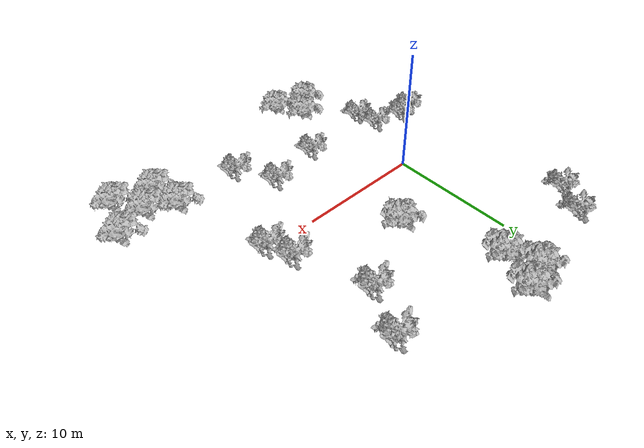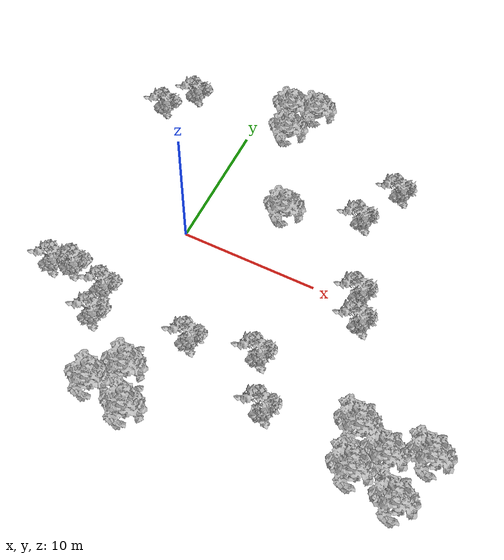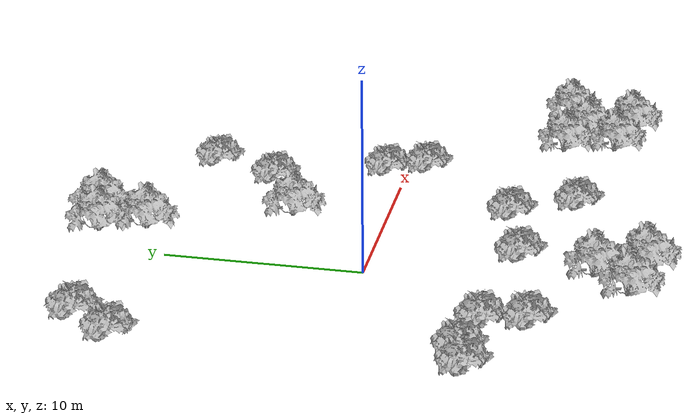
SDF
<sdf version="1.6">
 <world name="forest_1">
  <light name="sun" type="directional">
   <pose>0 0 10 0 -0 0</pose>
   <diffuse>0.8 0.8 0.8 1</diffuse>
   <specular>0.2 0.2 0.2 1</specular>
   <attenuation>
    <range>1000</range>
    <constant>0.9</constant>
    <linear>0.01</linear>
    <quadratic>0.001</quadratic>
   </attenuation>
   <direction>-0.5 0.1 -0.9</direction>
  </light>
  <gravity>0 0 -9.8</gravity>
  <magnetic_field>6e-06 2.3e-05 -4.2e-05</magnetic_field>
  <atmosphere type="adiabatic"/>
  <physics name="default_physics" default="0" type="ode">
   <max_step_size>0.001</max_step_size>
   <real_time_factor>1</real_time_factor>
   <real_time_update_rate>1000</real_time_update_rate>
  </physics>
  <scene><ambient>0.4 0.4 0.4 1</ambient><background>0.7 0.7 0.7 1</background><shadows>1</shadows></scene>
  <audio><device>default</device></audio>
  <spherical_coordinates>
   <surface_model>EARTH_WGS84</surface_model>
   <latitude_deg>0</latitude_deg>
   <longitude_deg>0</longitude_deg>
   <elevation>0</elevation>
   <heading_deg>0</heading_deg>
  </spherical_coordinates>
  <model name="Bush 2">
   <static>1</static>
   <pose>-6.04361 -5.68985 0 1.57079 -0 0</pose>
   <link name="link">
    <collision name="collision">
     <geometry><mesh><scale>5 5 5</scale><uri>model://bush_2/meshes/bush_2.obj</uri></mesh></geometry>
    </collision>
    <visual name="visual">
     <geometry><mesh><scale>5 5 5</scale><uri>model://bush_2/meshes/bush_2.obj</uri></mesh></geometry>
    </visual>
   </link>
  </model>
  <model name="Bush 2_clone">
   <static>1</static>
   <pose>-7.52451 -6.09843 0 1.57079 -0 0</pose>
   <link name="link">
    <collision name="collision">
     <geometry><mesh><scale>5 5 5</scale><uri>model://bush_2/meshes/bush_2.obj</uri></mesh></geometry>
    </collision>
    <visual name="visual">
     <geometry><mesh><scale>5 5 5</scale><uri>model://bush_2/meshes/bush_2.obj</uri></mesh></geometry>
    </visual>
   </link>
  </model>
  <model name="Bush 2_clone_clone">
   <static>1</static>
   <pose>-2.83557 -8.43174 0 1.57079 -0 0</pose>
   <link name="link">
    <collision name="collision">
     <geometry><mesh><scale>5 5 5</scale><uri>model://bush_2/meshes/bush_2.obj</uri></mesh></geometry>
    </collision>
    <visual name="visual">
     <geometry><mesh><scale>5 5 5</scale><uri>model://bush_2/meshes/bush_2.obj</uri></mesh></geometry>
    </visual>
   </link>
  </model>
  <model name="Bush 2_clone_clone_0">
   <static>1</static>
   <pose>3.87929 -7.17497 0 1.57079 -0 0</pose>
   <link name="link">
    <collision name="collision">
     <geometry><mesh><scale>5 5 5</scale><uri>model://bush_2/meshes/bush_2.obj</uri></mesh></geometry>
    </collision>
    <visual name="visual">
     <geometry><mesh><scale>5 5 5</scale><uri>model://bush_2/meshes/bush_2.obj</uri></mesh></geometry>
    </visual>
   </link>
  </model>
  <model name="Bush 2_clone_clone_1">
   <static>1</static>
   <pose>8.5224 -6.12644 0 1.57079 -0 0</pose>
   <link name="link">
    <collision name="collision">
     <geometry><mesh><scale>5 5 5</scale><uri>model://bush_2/meshes/bush_2.obj</uri></mesh></geometry>
    </collision>
    <visual name="visual">
     <geometry><mesh><scale>5 5 5</scale><uri>model://bush_2/meshes/bush_2.obj</uri></mesh></geometry>
    </visual>
   </link>
  </model>
  <model name="Bush 2_clone_clone_1_clone">
   <static>1</static>
   <pose>10.3527 -9.39984 0 1.57079 -0 0</pose>
   <link name="link">
    <collision name="collision">
     <geometry><mesh><scale>5 5 5</scale><uri>model://bush_2/meshes/bush_2.obj</uri></mesh></geometry>
    </collision>
    <visual name="visual">
     <geometry><mesh><scale>5 5 5</scale><uri>model://bush_2/meshes/bush_2.obj</uri></mesh></geometry>
    </visual>
   </link>
  </model>
  <model name="Bush 2_clone_clone_1_clone_0">
   <static>1</static>
   <pose>13.4885 -0.881759 0 1.57079 -0 0</pose>
   <link name="link">
    <collision name="collision">
     <geometry><mesh><scale>5 5 5</scale><uri>model://bush_2/meshes/bush_2.obj</uri></mesh></geometry>
    </collision>
    <visual name="visual">
     <geometry><mesh><scale>5 5 5</scale><uri>model://bush_2/meshes/bush_2.obj</uri></mesh></geometry>
    </visual>
   </link>
  </model>
  <model name="Bush 2_clone_clone_1_clone_1">
   <static>1</static>
   <pose>12.7046 1.20077 0 1.57079 -0 0</pose>
   <link name="link">
    <collision name="collision">
     <geometry><mesh><scale>5 5 5</scale><uri>model://bush_2/meshes/bush_2.obj</uri></mesh></geometry>
    </collision>
    <visual name="visual">
     <geometry><mesh><scale>5 5 5</scale><uri>model://bush_2/meshes/bush_2.obj</uri></mesh></geometry>
    </visual>
   </link>
  </model>
  <model name="Bush 2_clone_clone_1_clone_2">
   <static>1</static>
   <pose>12.1716 10.5134 0 1.57079 -0 0</pose>
   <link name="link">
    <collision name="collision">
     <geometry><mesh><scale>5 5 5</scale><uri>model://bush_2/meshes/bush_2.obj</uri></mesh></geometry>
    </collision>
    <visual name="visual">
     <geometry><mesh><scale>5 5 5</scale><uri>model://bush_2/meshes/bush_2.obj</uri></mesh></geometry>
    </visual>
   </link>
  </model>
  <model name="Bush 2_clone_clone_1_clone_3">
   <static>1</static>
   <pose>10.5415 6.9661 0 1.57079 -0 0</pose>
   <link name="link">
    <collision name="collision">
     <geometry><mesh><scale>5 5 5</scale><uri>model://bush_2/meshes/bush_2.obj</uri></mesh></geometry>
    </collision>
    <visual name="visual">
     <geometry><mesh><scale>5 5 5</scale><uri>model://bush_2/meshes/bush_2.obj</uri></mesh></geometry>
    </visual>
   </link>
  </model>
  <model name="Bush 2_clone_clone_1_clone_4">
   <static>1</static>
   <pose>-7.62479 10.3688 0 1.57079 -0 0</pose>
   <link name="link">
    <collision name="collision">
     <geometry><mesh><scale>5 5 5</scale><uri>model://bush_2/meshes/bush_2.obj</uri></mesh></geometry>
    </collision>
    <visual name="visual">
     <geometry><mesh><scale>5 5 5</scale><uri>model://bush_2/meshes/bush_2.obj</uri></mesh></geometry>
    </visual>
   </link>
  </model>
  <model name="Bush 2_clone_clone_1_clone_5">
   <static>1</static>
   <pose>-5.97278 12.6192 0 1.57079 -0 0</pose>
   <link name="link">
    <collision name="collision">
     <geometry><mesh><scale>5 5 5</scale><uri>model://bush_2/meshes/bush_2.obj</uri></mesh></geometry>
    </collision>
    <visual name="visual">
     <geometry><mesh><scale>5 5 5</scale><uri>model://bush_2/meshes/bush_2.obj</uri></mesh></geometry>
    </visual>
   </link>
  </model>
  <model name="Bush 3">
   <static>1</static>
   <pose>1.79788 -10.9738 0 1.57079 -0 0</pose>
   <link name="link">
    <collision name="collision">
     <geometry><mesh><scale>5 5 5</scale><uri>model://bush_3/meshes/bush_3.obj</uri></mesh></geometry>
    </collision>
    <visual name="visual">
     <geometry><mesh><scale>5 5 5</scale><uri>model://bush_3/meshes/bush_3.obj</uri></mesh></geometry>
    </visual>
   </link>
  </model>
  <model name="Bush 3_clone">
   <static>1</static>
   <pose>0.185512 -12.7582 0 1.57079 -0 0</pose>
   <link name="link">
    <collision name="collision">
     <geometry><mesh><scale>5 5 5</scale><uri>model://bush_3/meshes/bush_3.obj</uri></mesh></geometry>
    </collision>
    <visual name="visual">
     <geometry><mesh><scale>5 5 5</scale><uri>model://bush_3/meshes/bush_3.obj</uri></mesh></geometry>
    </visual>
   </link>
  </model>
  <model name="Bush 3_clone_0">
   <static>1</static>
   <pose>3.10593 -13.3626 0 1.57079 -0 0</pose>
   <link name="link">
    <collision name="collision">
     <geometry><mesh><scale>5 5 5</scale><uri>model://bush_3/meshes/bush_3.obj</uri></mesh></geometry>
    </collision>
    <visual name="visual">
     <geometry><mesh><scale>5 5 5</scale><uri>model://bush_3/meshes/bush_3.obj</uri></mesh></geometry>
    </visual>
   </link>
  </model>
  <model name="Bush 3_clone_1">
   <static>1</static>
   <pose>2.80683 11.7862 0 1.57079 -0 0</pose>
   <link name="link">
    <collision name="collision">
     <geometry><mesh><scale>5 5 5</scale><uri>model://bush_3/meshes/bush_3.obj</uri></mesh></geometry>
    </collision>
    <visual name="visual">
     <geometry><mesh><scale>5 5 5</scale><uri>model://bush_3/meshes/bush_3.obj</uri></mesh></geometry>
    </visual>
   </link>
  </model>
  <model name="Bush 3_clone_2">
   <static>1</static>
   <pose>4.00314 14.5781 0 1.57079 -0 0</pose>
   <link name="link">
    <collision name="collision">
     <geometry><mesh><scale>5 5 5</scale><uri>model://bush_3/meshes/bush_3.obj</uri></mesh></geometry>
    </collision>
    <visual name="visual">
     <geometry><mesh><scale>5 5 5</scale><uri>model://bush_3/meshes/bush_3.obj</uri></mesh></geometry>
    </visual>
   </link>
  </model>
  <model name="Bush 3_clone_3">
   <static>1</static>
   <pose>2.06905 14.0669 0 1.57079 -0 0</pose>
   <link name="link">
    <collision name="collision">
     <geometry><mesh><scale>5 5 5</scale><uri>model://bush_3/meshes/bush_3.obj</uri></mesh></geometry>
    </collision>
    <visual name="visual">
     <geometry><mesh><scale>5 5 5</scale><uri>model://bush_3/meshes/bush_3.obj</uri></mesh></geometry>
    </visual>
   </link>
  </model>
  <model name="Bush 3_clone_3_clone">
   <static>1</static>
   <pose>5.68897 4.83527 0 1.57079 -0 0</pose>
   <link name="link">
    <collision name="collision">
     <geometry><mesh><scale>5 5 5</scale><uri>model://bush_3/meshes/bush_3.obj</uri></mesh></geometry>
    </collision>
    <visual name="visual">
     <geometry><mesh><scale>5 5 5</scale><uri>model://bush_3/meshes/bush_3.obj</uri></mesh></geometry>
    </visual>
   </link>
  </model>
  <model name="Bush 2_clone_clone_0_clone">
   <static>1</static>
   <pose>-3.24013 -6.28072 0 1.57079 -0 0</pose>
   <link name="link">
    <collision name="collision">
     <geometry><mesh><scale>5 5 5</scale><uri>model://bush_2/meshes/bush_2.obj</uri></mesh></geometry>
    </collision>
    <visual name="visual">
     <geometry><mesh><scale>5 5 5</scale><uri>model://bush_2/meshes/bush_2.obj</uri></mesh></geometry>
    </visual>
   </link>
  </model>
  <model name="Bush 3_clone_4">
   <static>1</static>
   <pose>17.1021 -10.6666 0 1.57079 -0 0</pose>
   <link name="link">
    <collision name="collision">
     <geometry><mesh><scale>5 5 5</scale><uri>model://bush_3/meshes/bush_3.obj</uri></mesh></geometry>
    </collision>
    <visual name="visual">
     <geometry><mesh><scale>5 5 5</scale><uri>model://bush_3/meshes/bush_3.obj</uri></mesh></geometry>
    </visual>
   </link>
  </model>
  <model name="Bush 3_clone_5">
   <static>1</static>
   <pose>18.6119 -8.9659 0 1.57079 -0 0</pose>
   <link name="link">
    <collision name="collision">
     <geometry><mesh><scale>5 5 5</scale><uri>model://bush_3/meshes/bush_3.obj</uri></mesh></geometry>
    </collision>
    <visual name="visual">
     <geometry><mesh><scale>5 5 5</scale><uri>model://bush_3/meshes/bush_3.obj</uri></mesh></geometry>
    </visual>
   </link>
  </model>
  <model name="Bush 3_clone_6">
   <static>1</static>
   <pose>21.1105 -7.86362 0 1.57079 -0 0</pose>
   <link name="link">
    <collision name="collision">
     <geometry><mesh><scale>5 5 5</scale><uri>model://bush_3/meshes/bush_3.obj</uri></mesh></geometry>
    </collision>
    <visual name="visual">
     <geometry><mesh><scale>5 5 5</scale><uri>model://bush_3/meshes/bush_3.obj</uri></mesh></geometry>
    </visual>
   </link>
  </model>
  <model name="Bush 3_clone_7">
   <static>1</static>
   <pose>20.08 -11.3561 0 1.57079 -0 0</pose>
   <link name="link">
    <collision name="collision">
     <geometry><mesh><scale>5 5 5</scale><uri>model://bush_3/meshes/bush_3.obj</uri></mesh></geometry>
    </collision>
    <visual name="visual">
     <geometry><mesh><scale>5 5 5</scale><uri>model://bush_3/meshes/bush_3.obj</uri></mesh></geometry>
    </visual>
   </link>
  </model>
  <model name="Bush 3_clone_8">
   <static>1</static>
   <pose>16.4936 -7.93905 0 1.57079 -0 0</pose>
   <link name="link">
    <collision name="collision">
     <geometry><mesh><scale>5 5 5</scale><uri>model://bush_3/meshes/bush_3.obj</uri></mesh></geometry>
    </collision>
    <visual name="visual">
     <geometry><mesh><scale>5 5 5</scale><uri>model://bush_3/meshes/bush_3.obj</uri></mesh></geometry>
    </visual>
   </link>
  </model>
 </world>
</sdf>
